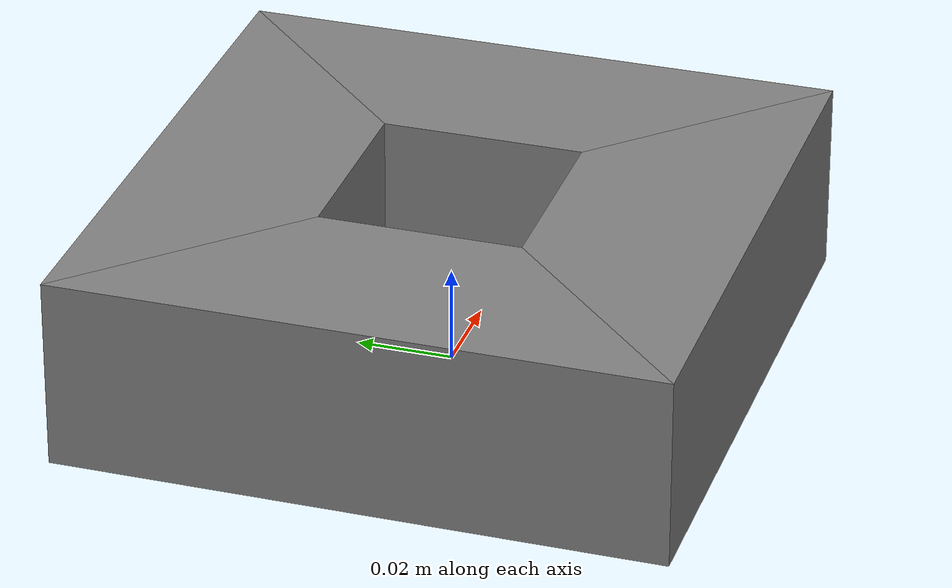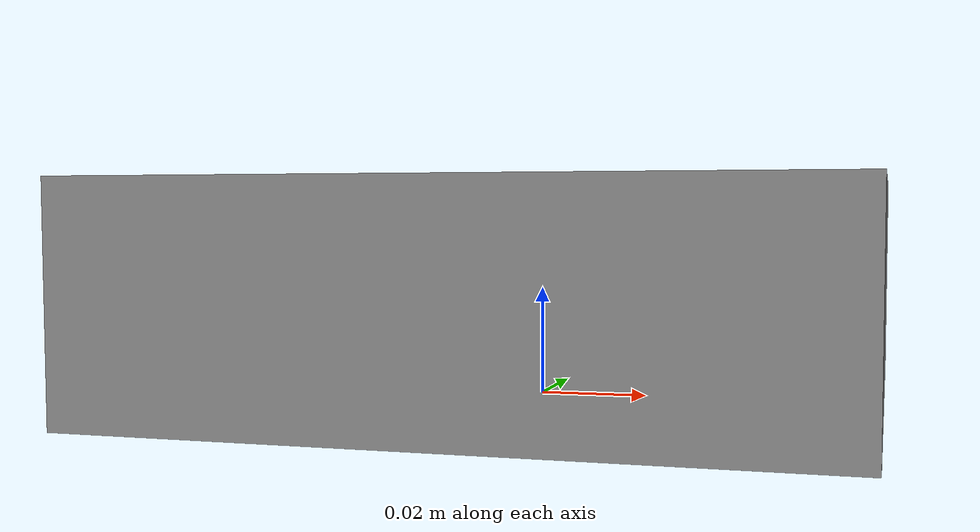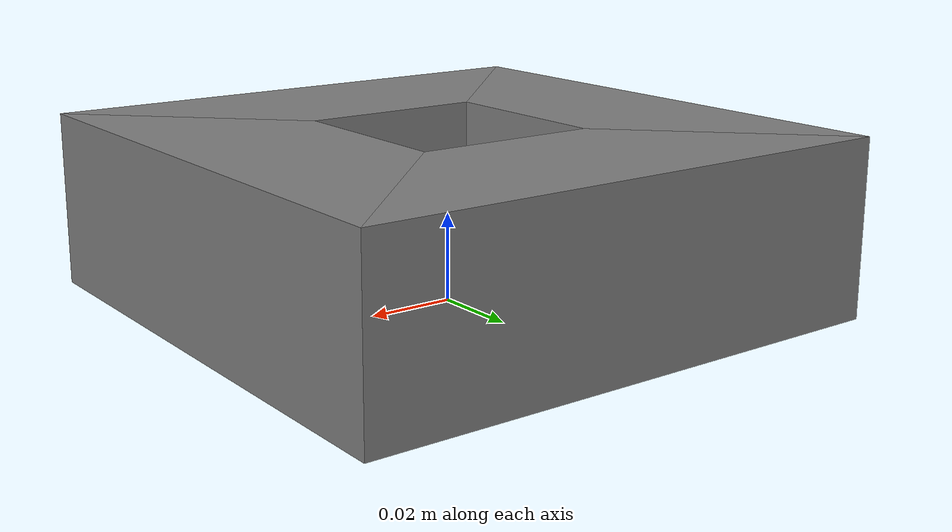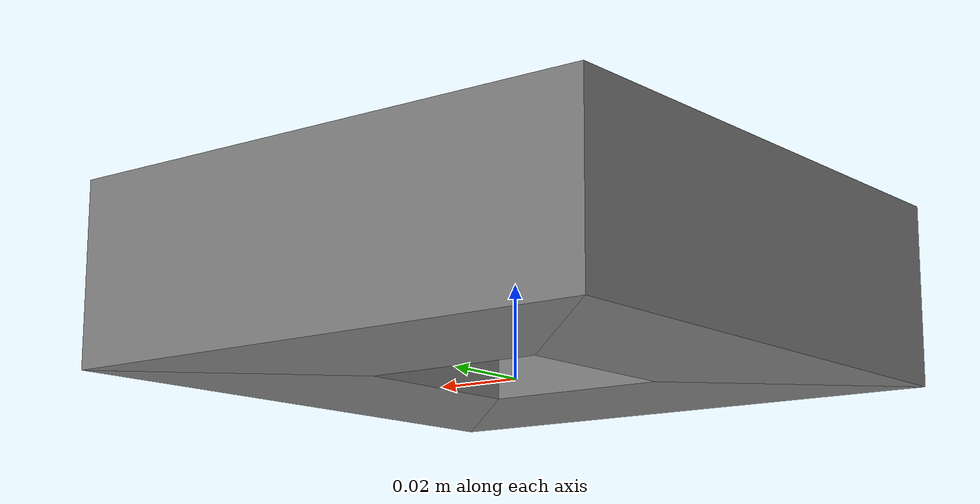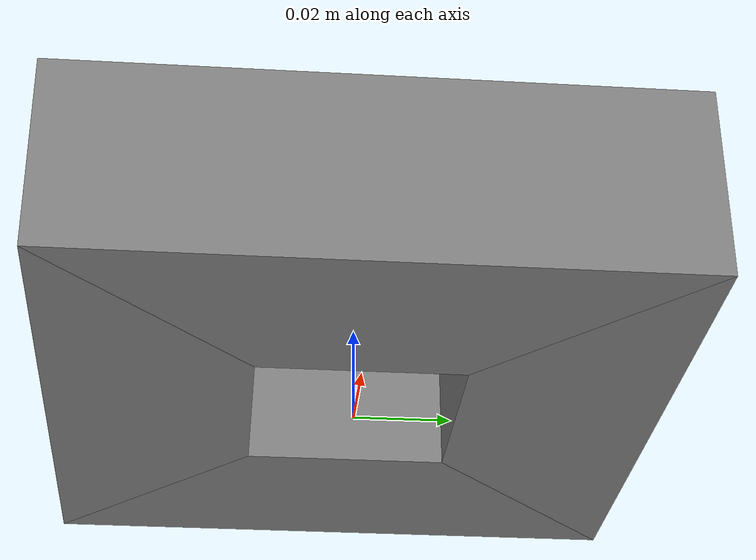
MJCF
<mujoco model="hole">
  <default>
    <default class="collision">
      <geom group="0" type="mesh" solimp="0.9 0.95 0.001 0.5 2" density="100000" solref=".004 1" condim="6"/>
    </default>
  </default>
  <asset>
    <texture file="../textures/red-wood.png" type="cube" name="red-wood" />
    <material name="plate_mat" texture="red-wood" texrepeat="3 3" specular="0.4" shininess="0.1" />
    <mesh file="square-hole/square_hole_c0.obj" name="hole_collision_top"/>
    <mesh file="square-hole/square_hole_c1.obj" name="hole_collision_left"/>
    <mesh file="square-hole/square_hole_c2.obj" name="hole_collision_bottom"/>
    <mesh file="square-hole/square_hole_c3.obj" name="hole_collision_right"/>
  </asset>
  <worldbody>
    <body>
      <body name="object">
        <geom mesh="hole_collision_top" class="collision" group="0" solref=".004 1"/>
        <geom mesh="hole_collision_left" class="collision" group="0" solref=".004 1"/>
        <geom mesh="hole_collision_bottom" class="collision" group="0" solref=".004 1"/>
        <geom mesh="hole_collision_right" class="collision" group="0" solref=".004 1"/>
      </body>
      <site rgba="0 0 0 0" size="0.005" pos="0 0 -0.1" name="bottom_site"/>
      <site rgba="0 0 0 0" size="0.005" pos="0 0 0.03" name="top_site"/>
      <site rgba="0 0 0 0" size="0.005" pos="0.03 0.03 0" name="horizontal_radius_site"/>
    </body>
  </worldbody>
</mujoco>
